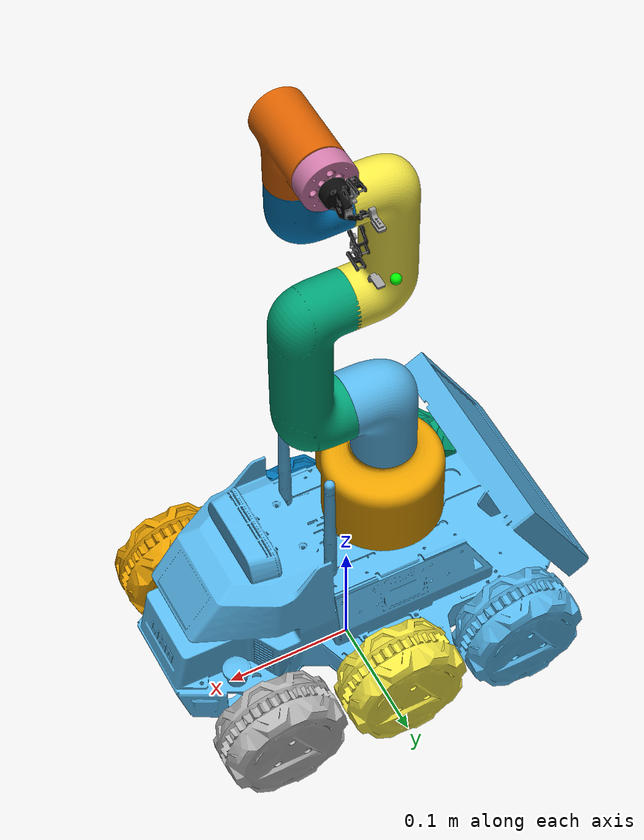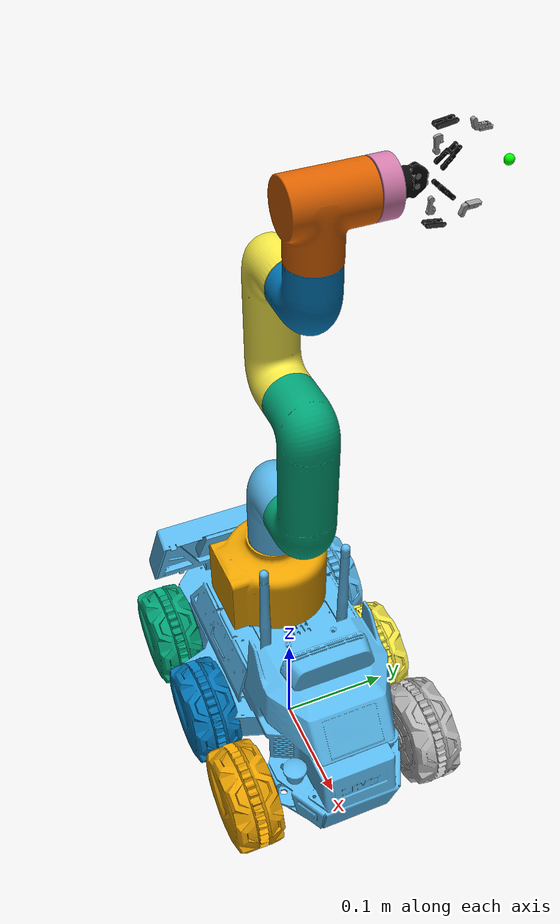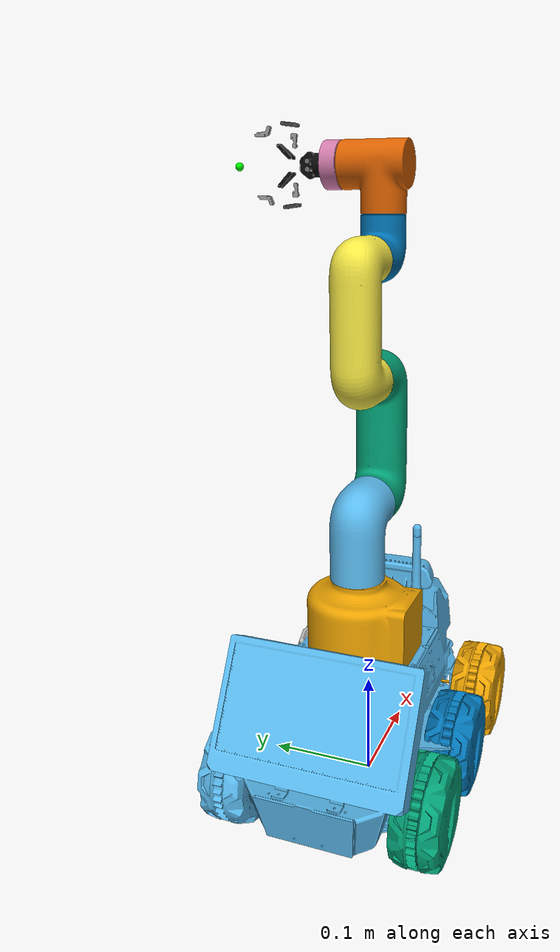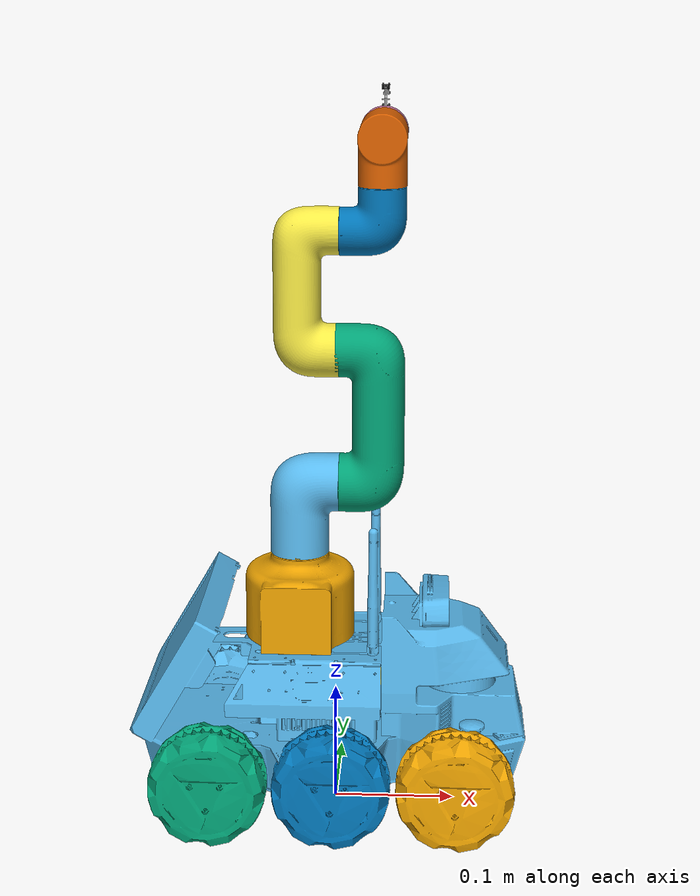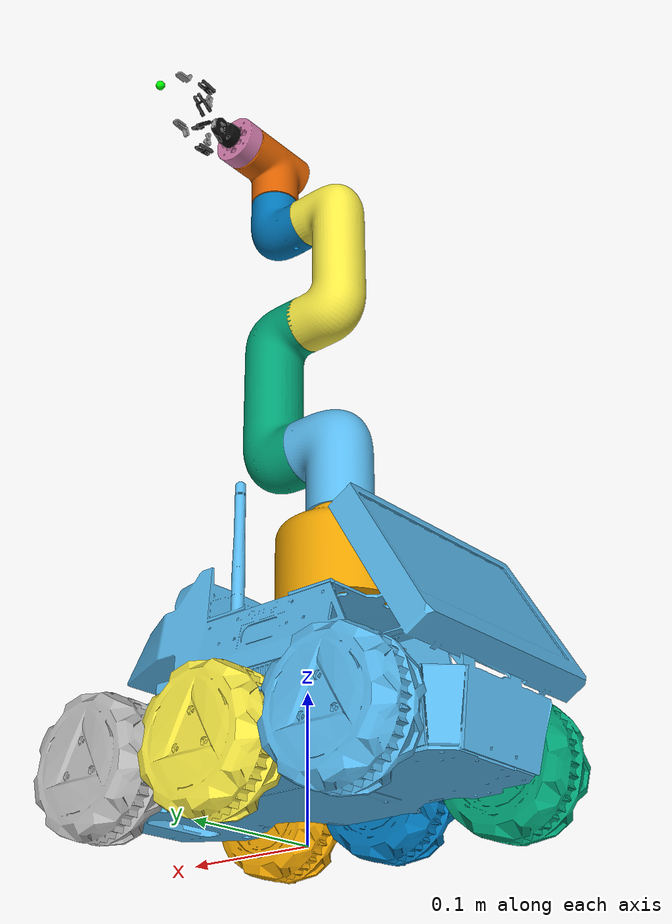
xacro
<?xml version="1.0"?>
<robot xmlns:xacro="http://www.ros.org/wiki/xacro" name="limo_four_diff">
    <xacro:arg name="initial_positions_file" default="initial_positions.yaml" />

    <!-- Import limo_four_diff urdf file -->
    <xacro:include filename="$(find limo_description)/urdf/limo_four_diff_arm.xacro" />

    <!-- Import control_xacro -->
    <xacro:include filename="limo_four_diff.ros2_control.xacro" />

    <xacro:limo_four_diff_ros2_control name="FakeSystem" initial_positions_file="$(arg initial_positions_file)"/>

</robot>

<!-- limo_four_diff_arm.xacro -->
<robot name="limo_four_diff" xmlns:xacro="http://ros.org/wiki/xacro">

    <xacro:include filename="$(find limo_description)/urdf/limo_xacro.xacro" />
     <xacro:include filename="$(find mycobot_description)/urdf/mycobot_urdf_gripper_mountable.urdf.xacro" />

    <!-- Variables -->
    <xacro:property name="M_PI" value="3.14159"/>

    <!-- Vehicle Geometries -->
    <xacro:property name="base_x_size" value="0.13" />
    <xacro:property name="base_y_size" value="0.12" />
    <xacro:property name="base_z_size" value="0.1" />

    <xacro:property name="wheelbase" value="0.2"/>
    <xacro:property name="track" value="0.13"/>
    <xacro:property name="wheel_vertical_offset" value="-0.10" />
    <xacro:property name="base_mass" value="2.1557"/>

    <xacro:property name="wheel_length" value="0.001" />
    <xacro:property name="wheel_radius" value="0.045" />
    <xacro:property name="center_wheel_radius" value="0.045" />

  <link name="base_footprint"/>

  <joint name="base_joint" type="fixed">
    <parent link="base_footprint"/>
    <child link="base_link"/>
    <origin xyz="0.0 0.0 0.15" rpy="0 0 0"/>
  </joint>
    <!-- Base link -->
    <link name="base_link">
        <visual>
            <origin xyz="0 0 -0.15" rpy="0 0 1.57" />
            <geometry>
                <mesh filename="package://limo_description/meshes/limo_optimal.dae" scale="1 1 1"/>
            </geometry>
        </visual>
        <collision>
            <origin xyz="0 0 -0.07" rpy="0 0 0" />
          <geometry>
              <box size="${base_x_size} ${base_y_size} ${base_z_size}"/>
          </geometry>
        </collision>
    </link>

    <link name="inertial_link">
        <inertial>
            <origin xyz="0.0 0.0 0.0" />
            <mass value="${base_mass}" />
            <inertia ixx="0.0043832566666666675" ixy="0" ixz="0"
                     iyy="0.004832360833333334" iyz="0"
                     izz="0.005622784166666667" />
        </inertial>
    </link>

    <joint name="inertial_joint" type="fixed">
        <origin xyz="0 0 0" rpy="0 0 0" />
        <parent link="base_link" />
        <child link="inertial_link" />
    </joint>

    <xacro:limo_laser parent_prefix="base_link" frame_prefix="laser">
        <origin xyz="0.103 0 -0.034" rpy="0 0 0"/>
    </xacro:limo_laser>

    <xacro:limo_depth_camera parent_prefix="base_link" frame_prefix="depth_camera">
        <origin xyz="0.084 0 0.026" rpy="0 0 0"/>
    </xacro:limo_depth_camera>

    <xacro:limo_imu parent_prefix="base_link" frame_prefix="imu">
        <origin xyz="0.0 0 -0.1" rpy="0 0 0"/>
    </xacro:limo_imu>

    <xacro:limo_wheel parent_prefix="base_link" wheel_prefix="front_left" reflect="1" fixed_on="true">
        <origin xyz="${wheelbase/2} ${track/2} ${wheel_vertical_offset}" rpy="0 0  0" />
    </xacro:limo_wheel>

    <xacro:limo_wheel parent_prefix="base_link" wheel_prefix="front_right" reflect="-1" fixed_on="true">
        <origin xyz="${wheelbase/2} ${-track/2} ${wheel_vertical_offset}" rpy="${M_PI} 0 0" />
    </xacro:limo_wheel>

    <xacro:limo_wheel parent_prefix="base_link" wheel_prefix="rear_left" reflect="1" fixed_on="true">
        <origin xyz="${-wheelbase/2} ${track/2} ${wheel_vertical_offset}" rpy="0 0 0" />
    </xacro:limo_wheel>

    <xacro:limo_wheel parent_prefix="base_link" wheel_prefix="rear_right" reflect="-1" fixed_on="true">
        <origin xyz="${-wheelbase/2} ${-track/2} ${wheel_vertical_offset}" rpy="${M_PI} 0 0" />
    </xacro:limo_wheel>

    <!-- Simulation Wheels for better movement -->
    <xacro:limo_center_wheel parent_prefix="base_link" wheel_prefix="center_left" reflect="1" visual_on="true">
        <origin xyz="0.0 ${track/2} ${wheel_vertical_offset}" rpy="0 0 0" />
    </xacro:limo_center_wheel>

    <xacro:limo_center_wheel parent_prefix="base_link" wheel_prefix="center_right" reflect="-1" visual_on="true">
        <origin xyz="0.0 ${-track/2} ${wheel_vertical_offset}" rpy="${M_PI} 0 0" />
    </xacro:limo_center_wheel>

    <gazebo reference="imu_link">
    <gravity>true</gravity>
    <sensor name="twr_imu" type="imu">
      <pose relative_to='imu_link'>0 0 0 0 0 0</pose>
      <always_on>true</always_on>
      <update_rate>100</update_rate>
      <visualize>true</visualize>
      <topic>imu</topic>
      <gz_frame_id>imu_link</gz_frame_id>
      <imu>
        <orientation>
          <x>
            <noise type="gaussian">
              <mean>0.0</mean>
              <stddev>2e-3</stddev>
            </noise>
          </x>
          <y>
            <noise type="gaussian">
              <mean>0.0</mean>
              <stddev>2e-3</stddev>
            </noise>
          </y>
          <z>
            <noise type="gaussian">
              <mean>0.0</mean>
              <stddev>2e-3</stddev>
            </noise>
          </z>
        </orientation>
        <angular_velocity>
          <x>
            <noise type="gaussian">
              <mean>0.0</mean>
              <stddev>2e-4</stddev>
            </noise>
          </x>
          <y>
            <noise type="gaussian">
              <mean>0.0</mean>
              <stddev>2e-4</stddev>
            </noise>
          </y>
          <z>
            <noise type="gaussian">
              <mean>0.0</mean>
              <stddev>2e-4</stddev>
            </noise>
          </z>
        </angular_velocity>
        <linear_acceleration>
          <x>
            <noise type="gaussian">
              <mean>0.0</mean>
              <stddev>1.7e-2</stddev>
            </noise>
          </x>
          <y>
            <noise type="gaussian">
              <mean>0.0</mean>
              <stddev>1.7e-2</stddev>
            </noise>
          </y>
          <z>
            <noise type="gaussian">
              <mean>0.0</mean>
              <stddev>1.7e-2</stddev>
            </noise>
          </z>
        </linear_acceleration>
      </imu>
    </sensor>
</gazebo>
<gazebo reference="laser_link">
    <sensor name="laser" type="gpu_lidar">
      <always_on>true</always_on>
      <visualize>false</visualize>
      <update_rate>10</update_rate>
      <topic>scan</topic>
      <gz_frame_id>laser_link</gz_frame_id>
      <lidar>
        <scan>
          <horizontal>
            <samples>720</samples>
            <resolution>1.000000</resolution>
            <min_angle>-3.14159</min_angle>
            <max_angle>3.14159</max_angle>
          </horizontal>
        </scan>
        <range>
          <min>0.3</min>
          <max>15.0</max>
          <resolution>0.015</resolution>
        </range>
        <noise>
          <type>gaussian</type>
          <mean>0.0</mean>
          <stddev>0.01</stddev>
        </noise>
      </lidar>
    </sensor>
  </gazebo>

    <gazebo reference="front_left_wheel_link">
        <mu1>0</mu1>
        <mu2>0</mu2>
        <kp>10000000.0</kp>
        <kd>1.0</kd>
        <minDepth>0.01</minDepth>
        <fdir1>1 0 0</fdir1>
        <maxContacts value="4"/>
    </gazebo>
    <gazebo reference="front_right_wheel_link">
        <mu1>0</mu1>
        <mu2>0</mu2>
        <kp>10000000.0</kp>
        <kd>1.0</kd>
        <minDepth>0.01</minDepth>
        <fdir1>1 0 0</fdir1>
        <maxContacts value="4"/>
    </gazebo>
    <gazebo reference="rear_left_wheel_link">
        <mu1>0</mu1>
        <mu2>0</mu2>
        <kp>10000000.0</kp>
        <kd>1.0</kd>
        <minDepth>0.01</minDepth>
        <fdir1>1 0 0</fdir1>
        <maxContacts value="4"/>
    </gazebo>
    <gazebo reference="rear_right_wheel_link">
        <mu1>0</mu1>
        <mu2>0</mu2>
        <kp>10000000.0</kp>
        <kd>1.0</kd>
        <minDepth>0.01</minDepth>
        <fdir1>1 0 0</fdir1>
        <maxContacts value="4"/>
    </gazebo>

    <gazebo reference="center_left_wheel_link">
        <mu1>100</mu1>
        <mu2>100</mu2>
        <kp>10000000.0</kp>
        <kd>1.0</kd>
        <minDepth>0.01</minDepth>
        <fdir1>1 0 0</fdir1>
        <maxContacts value="4"/>
    </gazebo>
    <gazebo reference="center_right_wheel_link">
        <mu1>100</mu1>
        <mu2>100</mu2>
        <kp>10000000.0</kp>
        <kd>1.0</kd>
        <minDepth>0.01</minDepth>
        <fdir1>1 0 0</fdir1>
        <maxContacts value="4"/>
    </gazebo>

    <gazebo>
      <plugin filename="gz-sim-joint-state-publisher-system" name="gz::sim::systems::JointStatePublisher">
        <topic>joint_states</topic>
        <joint_name>center_left_wheel</joint_name>
        <joint_name>center_right_wheel</joint_name>
      </plugin>
    </gazebo>
    <gazebo>
        <plugin filename="ignition-gazebo-diff-drive-system" name="ignition::gazebo::systems::DiffDrive">
            <left_joint>center_left_wheel</left_joint>
            <right_joint>center_right_wheel</right_joint>
            <wheel_separation>0.172</wheel_separation>
            <wheel_radius>0.045</wheel_radius>
            <odom_publish_frequency>100</odom_publish_frequency>
            <topic>cmd_vel</topic>
            <frame_id>odom</frame_id>
            <child_frame_id>base_footprint</child_frame_id>
        </plugin>
    </gazebo>
    <gazebo>
        <plugin filename="libignition-gazebo6-odometry-publisher-system"
            name="ignition::gazebo::systems::OdometryPublisher">
            <odom_frame>odom</odom_frame>
            <robot_base_frame>base_footprint</robot_base_frame>
            <odom_topic>odom</odom_topic>
            <tf_topic>tf</tf_topic>
            <dimensions>2</dimensions>
            <odom_publish_frequency>10</odom_publish_frequency>
        </plugin>
    </gazebo>

    <link name="camera_depth_optical_frame"/>

    <joint name="camera_depth_optical_joint" type="fixed">
      <origin xyz="0 0 0" rpy="${-M_PI/2} 0 ${-M_PI/2}" />
      <parent link="depth_camera_link" />
      <child link="camera_depth_optical_frame" />
    </joint>

    <!-- Optical frame is the frame in whihc the depth points are publish-->
    <!-- Reference frame is the frame rect to whihc we position teh optical frame-->
    <gazebo reference="depth_camera_link">
      <sensor name="sensor_depth" type="depth_camera">
        <always_on>true</always_on>
        <update_rate>60</update_rate>
        <visualize>true</visualize>
        <topic>camera/depth/image_rect_raw</topic>
        <ignition_frame_id>limo_robot/base_footprint/sensor_depth</ignition_frame_id>
        <camera name="limo_depth_camera">
          <camera_info_topic>camera/depth/camera_info</camera_info_topic>
          <!-- TC:Removed distorsion due to strange artifacts in image renderer-->
          <image>
            <format>R8G8B8</format>
            <width>400</width>
            <height>400</height>
          </image>
          <clip>
            <near>0.03</near>
            <far>15.0</far>
          </clip>
        </camera>
      </sensor>
      <sensor type="camera" name="sensor_camera">
        <always_on>true</always_on>
        <update_rate>30.0</update_rate>

        <topic>camera/color/image_raw</topic>
        <visualize>true</visualize>

        <ignition_frame_id>camera_depth_optical_frame</ignition_frame_id>
        <camera name="limo_camera">
            <camera_info_topic>camera/color/camera_info</camera_info_topic>
            <!-- TC:Removed distorsion due to strange artifacts in image renderer-->
            <image>
              <format>R8G8B8</format>
              <width>400</width>
              <height>400</height>
            </image>
            <clip>
              <near>0.03</near>
              <far>10.0</far>
            </clip>
          </camera>

      </sensor>
    </gazebo>

    <link name="arm_mount_link">
    </link>

    <joint name="arm_mount_joint" type="fixed">
        <parent link="base_link"/>
        <child link="arm_mount_link"/>
        <origin xyz="-0.03 0.0 0.0" rpy="0 0 0"/>
    </joint>

       <xacro:mycobot_arm arm_parent="arm_mount_link"/>

</robot>

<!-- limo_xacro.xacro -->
<robot name="limo_xacro" xmlns:xacro="http://ros.org/wiki/xacro">
    <xacro:macro name="limo_wheel" params="parent_prefix wheel_prefix reflect *joint_pose visual_on:=true fixed_on:=false">
        <link name="${wheel_prefix}_wheel_link">
            <inertial>
                <origin xyz="0 ${wheel_length/2} 0" rpy="1.57 0 0" />
                <mass value="0.5" />
                <inertia ixx="0.00033749999999999996" ixy="0" ixz="0" iyy="0.00033749999999999996" iyz="0" izz="0.00050625" />
            </inertial>
            <xacro:if value="${visual_on}">
                <visual>
                    <origin xyz="0 0 0" rpy="0 0 0" />
                    <geometry>
                        <mesh filename="package://limo_description/meshes/limo_optimal_wheels.dae" />
                    </geometry>
                </visual>
            </xacro:if>
            <collision>
              <origin xyz="0 ${wheel_length/2} 0" rpy="1.57 0 0" />
              <geometry>
                  <cylinder length="${wheel_length}" radius="0.044" />
              </geometry>
            </collision>
        </link>

        <!-- Conditionally set the joint type -->
        <xacro:if value="${fixed_on}">
            <joint name="${wheel_prefix}_wheel" type="fixed">
                <parent link="${parent_prefix}"/>
                <child link="${wheel_prefix}_wheel_link"/>
                <xacro:insert_block name="joint_pose"/>
            </joint>
        </xacro:if>
        <xacro:unless value="${fixed_on}">
            <joint name="${wheel_prefix}_wheel" type="continuous">
                <parent link="${parent_prefix}"/>
                <child link="${wheel_prefix}_wheel_link"/>
                <xacro:insert_block name="joint_pose"/>
                <axis xyz="0 ${reflect*1} 0"/>
                <limit effort="20.0" velocity="10.0"/>
            </joint>
        </xacro:unless>

    </xacro:macro>

    <!-- New macro for center wheel with different radius -->
    <xacro:macro name="limo_center_wheel" params="parent_prefix wheel_prefix reflect *joint_pose visual_on:=true fixed_on:=false">
        <link name="${wheel_prefix}_wheel_link">
            <inertial>
                <origin xyz="0 ${wheel_length/2} 0" rpy="1.57 0 0" />
                <mass value="0.5" />
                <inertia ixx="0.00033749999999999996" ixy="0" ixz="0" iyy="0.00033749999999999996" iyz="0" izz="0.00050625" />
            </inertial>
            <xacro:if value="${visual_on}">
                <visual>
                    <origin xyz="0 0 0" rpy="0 0 0" />
                    <geometry>
                        <mesh filename="package://limo_description/meshes/limo_optimal_wheels.dae" />
                    </geometry>
                </visual>
            </xacro:if>
            <collision>
              <origin xyz="0 ${wheel_length/2} 0" rpy="1.57 0 0" />
              <geometry>
                  <cylinder length="${wheel_length}" radius="${center_wheel_radius}" />
              </geometry>
            </collision>
        </link>

        <!-- Conditionally set the joint type -->
        <xacro:if value="${fixed_on}">
            <joint name="${wheel_prefix}_wheel" type="fixed">
                <parent link="${parent_prefix}"/>
                <child link="${wheel_prefix}_wheel_link"/>
                <xacro:insert_block name="joint_pose"/>
            </joint>
        </xacro:if>
        <xacro:unless value="${fixed_on}">
            <joint name="${wheel_prefix}_wheel" type="continuous">
                <parent link="${parent_prefix}"/>
                <child link="${wheel_prefix}_wheel_link"/>
                <xacro:insert_block name="joint_pose"/>
                <axis xyz="0 ${reflect*1} 0"/>
                <limit effort="20.0" velocity="10.0"/>
            </joint>
        </xacro:unless>
    </xacro:macro>

    <xacro:macro name="limo_laser" params="parent_prefix frame_prefix *joint_pose">
        <link name='${frame_prefix}_link'>
            <pose>0 0 0 0 0 0</pose>
            <inertial>
                <mass value="0.1"/>
                <origin xyz="0.0 0 0" rpy="0 0 0"/>
                <inertia
                    ixx="1e-6" ixy="0" ixz="0"
                    iyy="1e-6" iyz="0"
                    izz="1e-6"
                />
            </inertial>
            <visual name='laser_visual'>
                <origin xyz="0 0 0" rpy="0 0 0"/>
                <geometry>
                    <cylinder radius="0.02" length="0.01"/>
                </geometry>
            </visual>
            <collision name='laser_collision'>
                <origin xyz="0 0 0" rpy="0 0 0"/>
                <geometry>
                    <cylinder radius="0.032" length="0.016"/>
                </geometry>
            </collision>
        </link>
        <joint type="fixed" name="laser_joint">
            <xacro:insert_block name="joint_pose"/>
            <child link="${frame_prefix}_link"/>
            <parent link="${parent_prefix}"/>
        </joint>
        <gazebo reference="${frame_prefix}_link">
            <material>Gazebo/Yellow</material>
        </gazebo>
    </xacro:macro>

    <xacro:macro name="limo_depth_camera" params="parent_prefix frame_prefix *joint_pose">
        <link name='${frame_prefix}_link'>
            <pose>0 0 0 0 0 0</pose>
            <inertial>
                <mass value="0.1"/>
                <origin xyz="0.0 0 0" rpy="0 0 0"/>
                <inertia
                    ixx="1e-6" ixy="0" ixz="0"
                    iyy="1e-6" iyz="0"
                    izz="1e-6"
                />
            </inertial>
            <collision name='depth_camera_collision'>
                <origin xyz="0 0 0" rpy="0 0 0"/>
                <geometry>
                    <box size="0.02 0.06 0.015"/>
                </geometry>
            </collision>

        </link>

        <joint type="fixed" name="depth_camera_joint">
            <xacro:insert_block name="joint_pose"/>
            <child link="${frame_prefix}_link"/>
            <parent link="${parent_prefix}"/>
        </joint>
        <link name="depth_link"></link>

        <joint name="${frame_prefix}_to_camera_joint" type="fixed">
            <origin xyz="0 0 0" rpy="${-M_PI/2} 0 ${-M_PI/2} "/>
            <parent link="${frame_prefix}_link"/>
            <child link="depth_link"/>
          </joint>

        <gazebo reference="${frame_prefix}_link">
            <material>Gazebo/Yellow</material>
        </gazebo>
    </xacro:macro>

    <xacro:macro name="limo_imu" params="parent_prefix frame_prefix  *joint_pose">
        <link name='${frame_prefix}_link'>
            <pose>0 0 0 0 0 0</pose>
            <inertial>
                <mass value="0.01"/>
                <origin xyz="0.0 0 0" rpy="0 0 0"/>
                <inertia
                    ixx="1e-7" ixy="0" ixz="0"
                    iyy="1e-7" iyz="0"
                    izz="1e-7"
                />
            </inertial>
            <visual name='imu_visual'>
                <origin xyz="0 0 0" rpy="0 0 0"/>
                <geometry>
                    <box size="0.001 0.001 0.001"/>
                </geometry>
            </visual>
            <collision name='imu_collision'>
                <origin xyz="0 0 0" rpy="0 0 0"/>
                <geometry>
                    <box size="0.001 0.001 0.001"/>
                </geometry>
            </collision>
        </link>
        <joint type="fixed" name="imu_joint">
            <xacro:insert_block name="joint_pose"/>
            <child link="${frame_prefix}_link"/>
            <parent link="${parent_prefix}"/>
        </joint>
        <gazebo reference="${frame_prefix}_link">
            <material>Gazebo/Yellow</material>
        </gazebo>
    </xacro:macro>
</robot>

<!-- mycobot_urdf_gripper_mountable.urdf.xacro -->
<robot xmlns:xacro="http://ros.org/wiki/xacro" name="firefighter">

    <xacro:include filename="$(find robotiq_85_description)/urdf/robotiq_85_gripper_macro_gz_v2.urdf.xacro" />

  <xacro:macro name="inertial_properties" params="mass ixx ixy ixz iyy iyz izz">
    <inertial>
      <mass value="${mass}"/>
      <origin rpy="0 0 0" xyz="0 0 0"/>
      <inertia ixx="${ixx}" ixy="${ixy}" ixz="${ixz}" iyy="${iyy}" iyz="${iyz}" izz="${izz}"/>
    </inertial>
  </xacro:macro>

  <xacro:macro name="geometry_box" params="size">
    <geometry>
      <box size="${size}"/>
    </geometry>
  </xacro:macro>

  <xacro:macro name="geometry_mesh" params="filename scale">
    <geometry>
      <mesh filename="${filename}" scale="${scale}"/>
    </geometry>
  </xacro:macro>

<xacro:macro name="mycobot_arm" params="arm_parent">

    <!-- Example link using macros -->
  <link name="g_base">
    </link>

  <link name="joint1">
    <visual>
      <geometry>
       <mesh filename="package://mycobot_description/meshes/joint1_v2.dae" scale="1 1 1"/>
      </geometry>
      <origin xyz = "0.0 0 0 " rpy = "-1.5708 0 0"/>
    </visual>
    <collision>
      <geometry>
       <mesh filename="package://mycobot_description/meshes/joint1.stl" scale="1 1 1"/>
        </geometry>
        <origin xyz = "0.0 0 0 " rpy = "-1.5708 0 0"/>
    </collision>
        <inertial>
      <mass value="0.25"/>
      <origin xyz = "0.0 0 0.0365" rpy = " 0 0 0"/>
      <inertia ixx="0.0002375833333333333" ixy="0" ixz="0" iyy="0.0002375833333333333" iyz="0" izz="0.000253125"/>
    </inertial>
  </link>

  <link name="joint2">
    <visual>
      <geometry>
       <mesh filename="package://mycobot_description/meshes/joint2_v2.dae"/>
      </geometry>
      <origin xyz = "0.0 0 0" rpy = "-1.5708 0 0"/>
    </visual>
    <collision>
     <geometry>
       <mesh filename="package://mycobot_description/meshes/joint2.stl"/>
      </geometry>
      <origin xyz = "0.0 0 0" rpy = "-1.5708 0 0"/>
    </collision>
    <inertial>
      <mass value="0.072"/>
      <origin xyz = "0.0 0 0.0435" rpy = " 0 0 0"/>
      <inertia ixx="5.578199999999999e-05" ixy="0" ixz="0" iyy="5.578199999999999e-05" iyz="0" izz="2.0736e-05"/>
    </inertial>
  </link>

  <link name="joint3">
    <visual>
      <geometry>
       <mesh filename="package://mycobot_description/meshes/joint3_v2.dae"/>
      </geometry>
    <origin xyz = "0.0 0 0" rpy = "-1.5708 0 0"/>
    </visual>
    <collision>
      <geometry>
       <mesh filename="package://mycobot_description/meshes/joint3.stl"/>
      </geometry>
      <origin xyz = "0.0 0 0 " rpy = "-1.5708 0 0"/>
    </collision>
        <inertial>
      <mass value="0.072"/>
      <origin xyz = "0.025 0 0.06" rpy = "0 0 0"/>
      <inertia ixx="0.00015638399999999997" ixy="0" ixz="0" iyy="0.00015638399999999997" iyz="0" izz="2.0736e-05"/>
    </inertial>
  </link>

  <link name="joint4">
    <visual>
      <geometry>
       <mesh filename="package://mycobot_description/meshes/joint4_v2.dae"/>
      </geometry>
      <origin xyz = "0.0 0 0.0" rpy = "0 1.57 1.57"/>
    </visual>
    <collision>
      <geometry>
       <mesh filename="package://mycobot_description/meshes/joint4.stl"/>
      </geometry>
      <origin xyz = "0.0 0 0" rpy = "0 1.57 1.57"/>
    </collision>
        <inertial>
      <mass value="0.072"/>
      <origin xyz = "0.05 0 0.025" rpy = "0 1.57 0"/>
      <inertia ixx="0.00012022344" ixy="0" ixz="0" iyy="0.00012022344" iyz="0" izz="1.5876000000000002e-05"/>
    </inertial>
  </link>

  <link name="joint5">
    <visual>
      <geometry>
       <mesh filename="package://mycobot_description/meshes/joint5_v2.dae"/>
      </geometry>
    <origin xyz = "0.0 0 0" rpy = "1.57 0  -1.57"/>
    </visual>
    <collision>
       <geometry>
       <mesh filename="package://mycobot_description/meshes/joint5.stl"/>
      </geometry>
       <origin xyz = "0.0 0 0" rpy = "1.57 0  -1.57"/>
    </collision>
        <inertial>
      <mass value="0.072"/>
      <origin xyz = "0 0 -0.03" rpy = "0 0 0"/>
      <inertia ixx="2.170482e-05" ixy="0" ixz="0" iyy="2.170482e-05" iyz="0" izz="1.340964e-05"/>
    </inertial>
  </link>

  <link name="joint6">
    <visual>
      <geometry>
       <mesh filename="package://mycobot_description/meshes/joint6_v2.dae"/>
      </geometry>
    <origin xyz = "0 0 0 " rpy = "-1.57 0 0"/>
    </visual>
    <collision>
      <geometry>
       <mesh filename="package://mycobot_description/meshes/joint6.stl"/>
      </geometry>
    <origin xyz = "0 0.0 0" rpy = "-1.57 0 0"/>
    </collision>
        <inertial>
      <mass value="0.072"/>
      <origin rpy="0 0 0" xyz="0 0 0"/>
      <inertia ixx="2.1635519999999998e-05" ixy="0" ixz="0" iyy="2.1635519999999998e-05" iyz="0" izz="1.3271039999999997e-05"/>
    </inertial>
  </link>

  <link name="joint6_flange">
    <visual>
      <geometry>
       <mesh filename="package://mycobot_description/meshes/joint7_v2.dae"/>
      </geometry>
    <origin xyz = "0.0 0 0" rpy = "1.57 0 0"/>
    </visual>
    <collision>
      <geometry>
       <mesh filename="package://mycobot_description/meshes/joint7.stl"/>
      </geometry>
    <origin xyz = "0.0 0 0" rpy = "1.57 0 0"/>
    </collision>
        <inertial>
      <mass value="0.072"/>
      <origin rpy="0 0 0" xyz="0 0 0"/>
      <inertia ixx="7.761659999999998e-06" ixy="0" ixz="0" iyy="7.761659999999998e-06" iyz="0" izz="1.3271039999999997e-05"/>
    </inertial>
  </link>

    <joint name="world_to_g_base" type="fixed">
    <parent link="${arm_parent}"/>
    <child link="g_base"/>
    <origin xyz= "0 0 0" rpy = "0 0 0"/>
  </joint>

  <joint name="g_base_to_joint1" type="fixed">
    <axis xyz="0 0 0"/>
    <limit effort = "10.0" lower = "-3.14" upper = "3.14159" velocity = "1.0"/>
    <parent link="g_base"/>
    <child link="joint1"/>
    <origin xyz= "0 0 0" rpy = "0 0 0"/>
  </joint>

  <joint name="joint2_to_joint1" type="revolute">
    <axis xyz="0 0 1"/>
    <limit effort = "10.0" lower = "-3.14" upper = "3.14159" velocity = "1.0"/>
    <parent link="joint1"/>
    <child link="joint2"/>
    <origin xyz= "0 0 0.071304" rpy = "0 0 0"/>
    <dynamics damping="0" friction="0"/>
  </joint>

  <joint name="joint3_to_joint2" type="revolute">
    <axis xyz="1 0 0"/>
    <limit effort = "10.0" lower = "-3.14" upper = "3.14159" velocity = "1.0"/>
    <parent link="joint2"/>
    <child link="joint3"/>
    <origin xyz= "0.032495 0  0.059682" rpy = "0 0 0"/>
    <dynamics damping="0" friction="0"/>
  </joint>

  <joint name="joint4_to_joint3" type="revolute">
    <axis xyz=" 0 0 1"/>
    <limit effort = "10.0" lower = "-3.14" upper = "3.14159" velocity = "1.0"/>
    <parent link="joint3"/>
    <child link="joint4"/>
    <origin xyz= "0 0 0.110359" rpy = "0 -1.57 0"/>
    <dynamics damping="0" friction="0"/>
  </joint>

  <joint name="joint5_to_joint4" type="revolute">
    <axis xyz=" 0 0 1"/>
    <limit effort = "10.0" lower = "-3.14" upper = "3.14159" velocity = "1.0"/>
    <parent link="joint4"/>
    <child link="joint5"/>
    <origin xyz= "0.096139 0 0" rpy = "0 0 0"/>
    <dynamics damping="0" friction="0"/>
  </joint>

  <joint name="joint6_to_joint5" type="revolute">
    <axis xyz="0 0 1"/>
    <limit effort = "10.0" lower = "-3.14" upper = "3.14159" velocity = "1.0"/>
    <parent link="joint5"/>
    <child link="joint6"/>
    <origin xyz= "0.035 0.0 -0.0335" rpy = "0 1.57 0"/>
    <dynamics damping="0" friction="0"/>
  </joint>

  <joint name="joint6output_to_joint6" type="revolute">
    <axis xyz="0 0 1"/>
    <limit effort = "10.0" lower = "-3.14" upper = "3.14159" velocity = "1.0"/>
    <parent link="joint6"/>
    <child link="joint6_flange"/>
    <origin xyz= "0 0.036 0.038" rpy = "1.57 0 0"/>
    <dynamics damping="0" friction="0"/>
  </joint>

     <xacro:robotiq_85_gripper prefix="" parent="joint6_flange" in_scale="0.5">
       <origin xyz="0 0 -0.015" rpy="0 1.57 0"/>
   </xacro:robotiq_85_gripper>

  <ros2_control name="arm_system" type="system">
			<hardware>
				<plugin>ign_ros2_control/IgnitionSystem</plugin>
	    	</hardware>

	    	<joint name="joint2_to_joint1">
	    		<command_interface name="position">
	    			<param name="min">-3.14</param>
	    			<param name="max">3.14159</param>
	    		</command_interface>
	    		<state_interface name="position">
                  <param name="initial_value">0.0</param>
                </state_interface>
	    		<state_interface name="velocity"/>
	    		<state_interface name="effort"/>
	    	</joint>

            <joint name="joint3_to_joint2">
	    		<command_interface name="position">
	    			<param name="min">-3.14</param>
	    			<param name="max">3.14159</param>
	    		</command_interface>
	    		<state_interface name="position">
                  <param name="initial_value">0.0</param>
                </state_interface>
	    		<state_interface name="velocity"/>
	    		<state_interface name="effort"/>
	    	</joint>

            <joint name="joint4_to_joint3">
	    		<command_interface name="position">
	    			<param name="min">-3.14</param>
	    			<param name="max">3.14159</param>
	    		</command_interface>
	    		<state_interface name="position">
                  <param name="initial_value">0.0</param>
                </state_interface>
	    		<state_interface name="velocity"/>
	    		<state_interface name="effort"/>
	    	</joint>

            <joint name="joint5_to_joint4">
	    		<command_interface name="position">
	    			<param name="min">-3.14</param>
	    			<param name="max">3.14159</param>
	    		</command_interface>
	    		<state_interface name="position">
                  <param name="initial_value">0.0</param>
                </state_interface>
	    		<state_interface name="velocity"/>
	    		<state_interface name="effort"/>
	    	</joint>

            <joint name="joint6_to_joint5">
	    		<command_interface name="position">
	    			<param name="min">-3.14</param>
	    			<param name="max">3.14159</param>
	    		</command_interface>
	    		<state_interface name="position">
                  <param name="initial_value">0.0</param>
                </state_interface>
	    		<state_interface name="velocity"/>
	    		<state_interface name="effort"/>
	    	</joint>

             <joint name="joint6output_to_joint6">
	    		<command_interface name="position">
	    			<param name="min">-3.14</param>
	    			<param name="max">3.14159</param>
	    		</command_interface>
	    		<state_interface name="position">
                  <param name="initial_value">0.0</param>
                </state_interface>
	    		<state_interface name="velocity"/>
	    		<state_interface name="effort"/>
	    	</joint>

	  	</ros2_control>

    <gazebo>
        <plugin filename="ign_ros2_control-system" name="ign_ros2_control::IgnitionROS2ControlPlugin">
            <robot_sim_type>ign_ros2_control/IgnitionSystem</robot_sim_type>
            <parameters>$(find mycobot_gazebo)/config/controller_configuration_gripper.yaml</parameters>
        </plugin>
    </gazebo>

</xacro:macro>

</robot>

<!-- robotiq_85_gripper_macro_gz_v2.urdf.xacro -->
<robot name="robotiq_85_gripper" xmlns:xacro="http://ros.org/wiki/xacro">

    <xacro:macro name="box_inertia" params="mass x y z">
      <inertia  ixx="${mass*(y*y+z*z)/12.0}" ixy = "0" ixz = "0"
                iyy="${mass*(x*x+z*z)/12.0}" iyz = "0"
                izz="${mass*(x*x+z*z)/12.0}"
      />
    </xacro:macro>

        <xacro:macro name="robotiq_85_gripper" params="prefix parent in_scale *origin">

                <joint name="${prefix}robotiq_85_base_joint" type="fixed">
                        <parent link="${parent}"/>
                        <child link="${prefix}robotiq_85_base_link"/>
                        <xacro:insert_block name="origin"/>
                </joint>

                <link name="${prefix}robotiq_85_base_link">
                        <visual>
                                <origin xyz="${in_scale * 0.16} 0 0" rpy="0 0 0" />
                                <geometry>
                                        <sphere radius="${in_scale * 0.007}"/>
                                </geometry>
                                <material name="">
                                        <color rgba="0 1.0 0 1.0"/>
                                </material>
                        </visual>
                        <visual>
                                <geometry>
                                        <mesh filename="package://robotiq_85_description/meshes/visual/robotiq_85_base_link.dae" scale="${in_scale} ${in_scale} ${in_scale}"/>
                                </geometry>
                        </visual>
                        <collision>
                                <geometry>
                                        <mesh filename="package://robotiq_85_description/meshes/collision/robotiq_85_base_link.stl" scale="${in_scale} ${in_scale} ${in_scale}"/>
                                </geometry>
                        </collision>
                        <inertial>
                                <mass value="${in_scale * 0.636951}" />
                                <origin xyz="0.0 0.0 0.0" />
                                <xacro:box_inertia mass="${in_scale * 0.636951}" x="${0.047 * in_scale}" y="${0.0424 * in_scale}" z="${0.0375 * in_scale}" />
                        </inertial>
                </link>

                <joint name="${prefix}robotiq_85_left_knuckle_joint" type="revolute">
                        <parent link="${prefix}robotiq_85_base_link"/>
                        <child link="${prefix}robotiq_85_left_knuckle_link"/>
                        <axis xyz="0 0 1"/>
                        <origin rpy="${pi} 0.0 0.0" xyz="${0.05490451627 * in_scale} ${0.03060114443 * in_scale} 0.0"/>
                        <limit lower="0.0" upper="0.804" velocity="0.5" effort="50.0"/>
                </joint>

                <gazebo reference="${prefix}robotiq_85_left_knuckle_link">
                        <kp>1000000.0</kp>
                        <kd>100.0</kd>
                        <mu1>30.0</mu1>
                        <mu2>30.0</mu2>
                        <maxVel>1.0</maxVel>
                        <minDepth>0.001</minDepth>
                        <material>Gazebo/Grey</material>
                </gazebo>

        <link name="${prefix}robotiq_85_left_knuckle_link">
                        <visual>
                                <geometry>
                                        <mesh filename="package://robotiq_85_description/meshes/visual/robotiq_85_knuckle_link.dae" scale="${in_scale} ${in_scale} ${in_scale}"/>
                                </geometry>
                        </visual>
                        <collision>
                                <geometry>
                                        <mesh filename="package://robotiq_85_description/meshes/collision/robotiq_85_knuckle_link.stl" scale="${in_scale} ${in_scale} ${in_scale}"/>
                                </geometry>
                        </collision>
                        <inertial>
                                <mass value="${in_scale * 0.018491}" />
                                <origin xyz="0.0 0.0 0.0" />
                                <xacro:box_inertia mass="${in_scale * 0.018491}" x="${0.023 * in_scale}" y="${0.046 * in_scale}" z="${0.024 * in_scale}" />
                        </inertial>
                </link>

                <joint name="${prefix}robotiq_85_right_knuckle_joint" type="continuous">
                        <parent link="${prefix}robotiq_85_base_link"/>
                        <child link="${prefix}robotiq_85_right_knuckle_link"/>
                        <axis xyz="0 0 1"/>
                        <origin rpy="0.0 0.0 0.0" xyz="${0.05490451627 * in_scale} ${-0.03060114443 * in_scale} 0.0"/>
                        <limit lower="-3.14" upper="3.14" velocity="100.0" effort="50"/>
                        <mimic joint="${prefix}robotiq_85_left_knuckle_joint"/>
                </joint>

                <gazebo reference="${prefix}robotiq_85_right_knuckle_link">
                        <kp>1000000.0</kp>
                        <kd>100.0</kd>
                        <mu1>30.0</mu1>
                        <mu2>30.0</mu2>
                        <maxVel>1.0</maxVel>
                        <minDepth>0.001</minDepth>
                        <material>Gazebo/Grey</material>
                </gazebo>

                <link name="${prefix}robotiq_85_right_knuckle_link">
                        <visual>
                                <geometry>
                                        <mesh filename="package://robotiq_85_description/meshes/visual/robotiq_85_knuckle_link.dae" scale="${in_scale} ${in_scale} ${in_scale}"/>
                                </geometry>
                        </visual>
                        <collision>
                                <geometry>
                                        <mesh filename="package://robotiq_85_description/meshes/collision/robotiq_85_knuckle_link.stl" scale="${in_scale} ${in_scale} ${in_scale}"/>
                                </geometry>
                        </collision>
                        <inertial>
                                <mass value="${in_scale * 0.018491}" />
                                <origin xyz="0.0 0.0 0.0" />
                                <xacro:box_inertia mass="${in_scale * 0.018491}" x="${0.023 * in_scale}" y="${0.046 * in_scale}" z="${0.024 * in_scale}" />
                        </inertial>
                </link>

                <joint name="${prefix}robotiq_85_left_finger_joint" type="fixed">
                        <parent link="${prefix}robotiq_85_left_knuckle_link"/>
                        <child link="${prefix}robotiq_85_left_finger_link"/>
                        <origin xyz="${in_scale * -0.00408552455} ${in_scale * -0.03148604435} 0.0" rpy="0 0 0" />
                </joint>

                <joint name="${prefix}robotiq_85_right_finger_joint" type="fixed">
                        <parent link="${prefix}robotiq_85_right_knuckle_link"/>
                        <child link="${prefix}robotiq_85_right_finger_link"/>
                        <origin xyz="${in_scale * -0.00408552455} ${in_scale * -0.03148604435} 0.0" rpy="0 0 0" />
                </joint>

                <link name="${prefix}robotiq_85_left_finger_link">
                        <visual>
                                <geometry>
                                        <mesh filename="package://robotiq_85_description/meshes/visual/robotiq_85_finger_link.dae" scale="${in_scale} ${in_scale} ${in_scale}"/>
                                </geometry>
                        </visual>
                        <collision>
                                <geometry>
                                        <mesh filename="package://robotiq_85_description/meshes/collision/robotiq_85_finger_link.stl" scale="${in_scale} ${in_scale} ${in_scale}"/>
                                </geometry>
                        </collision>
                        <inertial>
                                <mass value="${in_scale * 0.027309}" />
                                <origin xyz="0.0 0.0 0.0" />
                                <xacro:box_inertia mass="${in_scale * 0.027309}" x="${0.059 * in_scale}" y="${0.018 * in_scale}" z="${0.027 * in_scale}" />
                        </inertial>
                </link>

                <link name="${prefix}robotiq_85_right_finger_link">
                        <visual>
                                <geometry>
                                        <mesh filename="package://robotiq_85_description/meshes/visual/robotiq_85_finger_link.dae" scale="${in_scale} ${in_scale} ${in_scale}"/>
                                </geometry>
                        </visual>
                        <collision>
                                <geometry>
                                        <mesh filename="package://robotiq_85_description/meshes/collision/robotiq_85_finger_link.stl" scale="${in_scale} ${in_scale} ${in_scale}"/>
                                </geometry>
                        </collision>
                        <inertial>
                                <mass value="${in_scale * 0.027309}" />
                                <origin xyz="0.0 0.0 0.0" />
                                <xacro:box_inertia mass="${in_scale * 0.027309}" x="${0.059 * in_scale}" y="${0.018 * in_scale}" z="${0.027 * in_scale}" />
                        </inertial>
                </link>

                <joint name="${prefix}robotiq_85_left_inner_knuckle_joint" type="continuous">
                        <parent link="${prefix}robotiq_85_base_link"/>
                        <child link="${prefix}robotiq_85_left_inner_knuckle_link"/>
                        <axis xyz="0 0 1"/>
                        <origin xyz="${in_scale * 0.06142} ${in_scale * 0.0127} 0" rpy="${pi} 0.0 0.0" />
                        <limit lower="-3.14" upper="3.14" velocity="100.0" effort="0.1"/>
                        <mimic joint="${prefix}robotiq_85_left_knuckle_joint" offset="0"/>
                </joint>

                <joint name="${prefix}robotiq_85_right_inner_knuckle_joint" type="continuous">
                        <parent link="${prefix}robotiq_85_base_link"/>
                        <child link="${prefix}robotiq_85_right_inner_knuckle_link"/>
                        <axis xyz="0 0 1"/>
                        <origin xyz="${in_scale * 0.06142} ${in_scale * -0.0127} 0" rpy="0 0 0"/>
                        <limit lower="-3.14" upper="3.14" velocity="100.0" effort="0.1"/>
                        <mimic joint="${prefix}robotiq_85_left_knuckle_joint" offset="0"/>
                </joint>

                <link name="${prefix}robotiq_85_left_inner_knuckle_link">
                        <visual>
                                <geometry>
                                        <mesh filename="package://robotiq_85_description/meshes/visual/robotiq_85_inner_knuckle_link.dae" scale="${in_scale} ${in_scale} ${in_scale}"/>
                                </geometry>
                        </visual>
                        <collision>
                                <geometry>
                                        <mesh filename="package://robotiq_85_description/meshes/collision/robotiq_85_inner_knuckle_link.stl" scale="${in_scale} ${in_scale} ${in_scale}"/>
                                </geometry>
                        </collision>
                        <inertial>
                <mass value="${in_scale * 0.029951}" />
                                <origin xyz="0.0 0.0 0.0" />
                                <xacro:box_inertia mass="${in_scale * 0.029951}" x="${0.055 * in_scale}" y="${0.0496 * in_scale}" z="${0.039 * in_scale}" />
                        </inertial>
                </link>
                <link name="${prefix}robotiq_85_right_inner_knuckle_link">
                        <visual>
                                <geometry>
                                        <mesh filename="package://robotiq_85_description/meshes/visual/robotiq_85_inner_knuckle_link.dae" scale="${in_scale} ${in_scale} ${in_scale}"/>
                                </geometry>
                        </visual>
                        <collision>
                                <geometry>
                                        <mesh filename="package://robotiq_85_description/meshes/collision/robotiq_85_inner_knuckle_link.stl" scale="${in_scale} ${in_scale} ${in_scale}"/>
                                </geometry>
                        </collision>
                        <inertial>
                                <mass value="${in_scale * 0.029951}" />
                                <origin xyz="0.0 0.0 0.0" />
                                <xacro:box_inertia mass="${in_scale * 0.029951}" x="${0.055 * in_scale}" y="${0.0496 * in_scale}" z="${0.039 * in_scale}" />
                        </inertial>
                </link>

                <joint name="${prefix}robotiq_85_left_finger_tip_joint" type="continuous">
                        <parent link="${prefix}robotiq_85_left_inner_knuckle_link"/>
                        <child link="${prefix}robotiq_85_left_finger_tip_link"/>
                        <axis xyz="0 0 1"/>
                        <origin xyz="${in_scale * 0.04303959807} ${in_scale * -0.03759940821} 0.0" rpy="0.0 0.0 0.0"/>
                        <limit lower="-3.14" upper="3.14" velocity="100.0" effort="0.1"/>
                        <mimic joint="${prefix}robotiq_85_left_knuckle_joint" multiplier="-1"/>
                </joint>

                <joint name="${prefix}robotiq_85_right_finger_tip_joint" type="continuous">
                        <parent link="${prefix}robotiq_85_right_inner_knuckle_link"/>
                        <child link="${prefix}robotiq_85_right_finger_tip_link"/>
                        <axis xyz="0 0 1"/>
                        <origin rpy="0.0 0.0 0.0" xyz="${in_scale * 0.04303959807} ${in_scale * -0.03759940821}  0.0"/>
                        <limit lower="-3.14" upper="3.14" velocity="100.0" effort="0.1"/>
                        <mimic joint="${prefix}robotiq_85_left_knuckle_joint" multiplier="-1"/>
                </joint>

                <link name="${prefix}robotiq_85_left_finger_tip_link">
                        <visual>
                                <geometry>
                                        <mesh filename="package://robotiq_85_description/meshes/visual/robotiq_85_finger_tip_link.dae" scale="${in_scale} ${in_scale} ${in_scale}"/>
                                </geometry>
                        </visual>
                        <collision>
                                <geometry>
                                        <mesh filename="package://robotiq_85_description/meshes/collision/robotiq_85_finger_tip_link.stl" scale="${in_scale} ${in_scale} ${in_scale}"/>
                                </geometry>
                        </collision>
                        <inertial>
                                <mass value="${in_scale * 0.019555}" />
                                <origin xyz="0.0 0.0 0.0" />
                                <xacro:box_inertia mass="${in_scale * 0.029951}" x="${0.057 * in_scale}" y="${0.0317 * in_scale}" z="${0.022 * in_scale}" />
                        </inertial>
                </link>

                <gazebo reference="${prefix}robotiq_85_left_finger_tip_link">
                        <kp>1000000.0</kp>
                        <kd>100.0</kd>
                        <mu1>30.0</mu1>
                        <mu2>30.0</mu2>
                        <maxVel>1.0</maxVel>
                        <minDepth>0.001</minDepth>
                        <material>Gazebo/Grey</material>
                </gazebo>
                <link name="${prefix}robotiq_85_right_finger_tip_link">
                        <visual>
                                <geometry>
                                        <mesh filename="package://robotiq_85_description/meshes/visual/robotiq_85_finger_tip_link.dae" scale="${in_scale} ${in_scale} ${in_scale}"/>
                                </geometry>
                        </visual>
                        <collision>
                                <geometry>
                                        <mesh filename="package://robotiq_85_description/meshes/collision/robotiq_85_finger_tip_link.stl" scale="${in_scale} ${in_scale} ${in_scale}"/>
                                </geometry>
                        </collision>
                        <inertial>
                                <mass value="${in_scale * 0.019555}" />
                                <origin xyz="0.0 0.0 0.0" />
                                <xacro:box_inertia mass="${in_scale * 0.029951}" x="${0.057 * in_scale}" y="${0.0317 * in_scale}" z="${0.022 * in_scale}" />
                        </inertial>
                </link>

                <gazebo reference="${prefix}robotiq_85_right_finger_tip_link">
                        <kp>1000000.0</kp>
                        <kd>100.0</kd>
                        <mu1>30.0</mu1>
                        <mu2>30.0</mu2>
                        <maxVel>1.0</maxVel>
                        <minDepth>0.001</minDepth>
                        <material>Gazebo/Grey</material>
                </gazebo>

                <xacro:include filename="$(find robotiq_85_description)/urdf/robotiq_85_gripper_gz.ros2_control.xacro"/>

                <xacro:robotiq_85_gripper_ros2_control name="RobotiqGripperSystem"/>

        </xacro:macro>
</robot>
